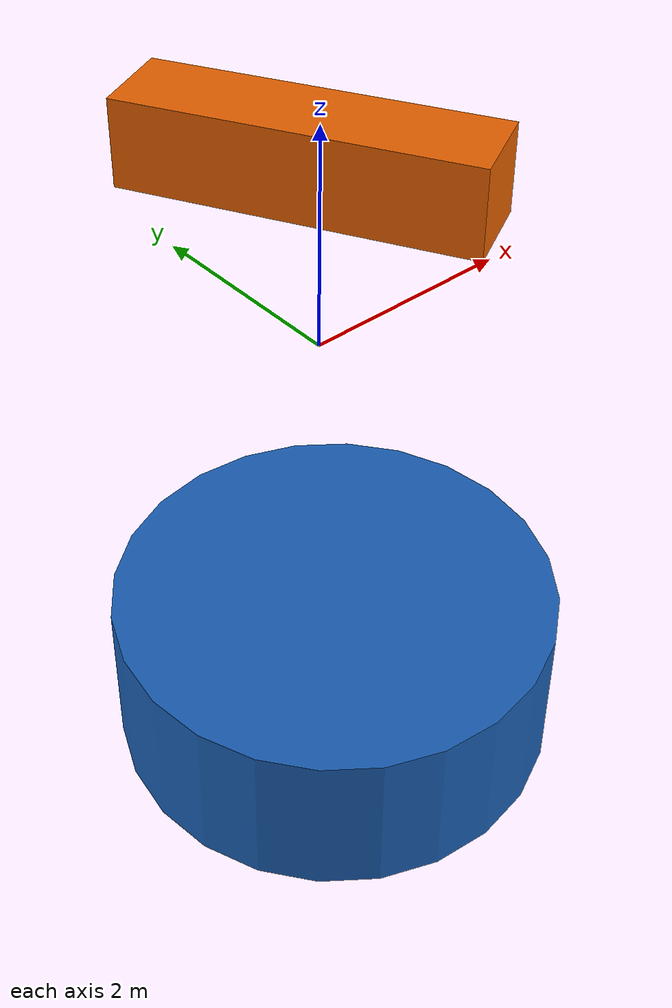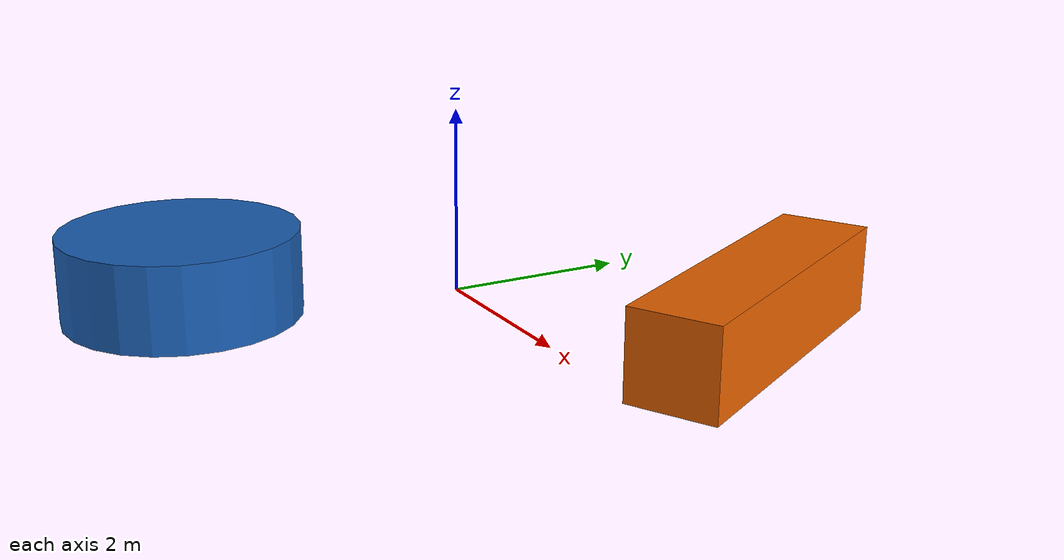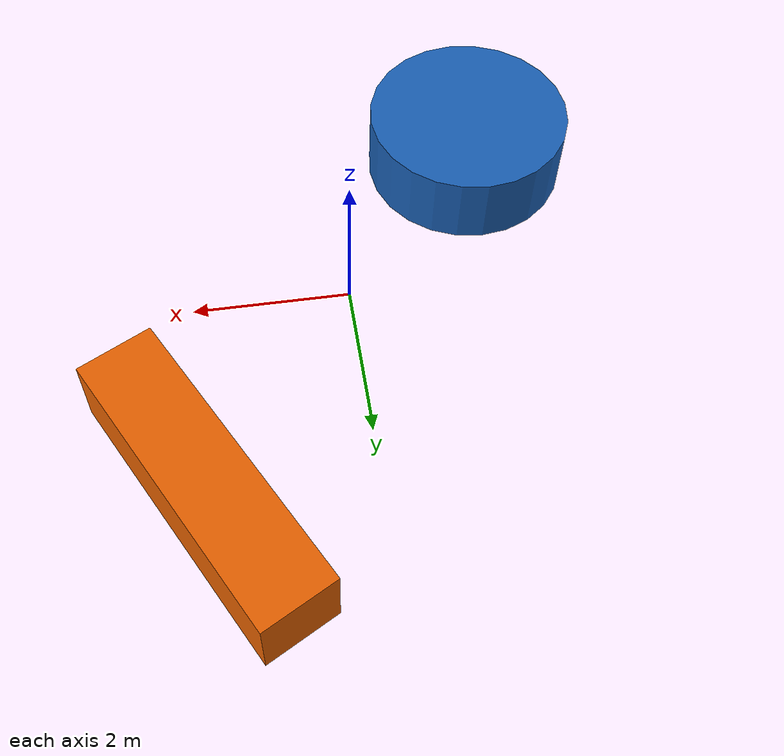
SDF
<?xml version='1.0'?>
<sdf version='1.7'>
  <model name='simple_objects'>
    <link name='link_0'>
      <inertial>
        <mass>3.90739</mass>
        <inertia>
          <ixx>5.29704</ixx>
          <ixy>0</ixy>
          <ixz>0</ixz>
          <iyy>0.651232</iyy>
          <iyz>0</iyz>
          <izz>5.29704</izz>
        </inertia>
        <pose>0 0 0 0 -0 0</pose>
      </inertial>
      <pose>2.0255 2.47846 0 0 -0 0.487153</pose>
      <gravity>1</gravity>
      <self_collide>0</self_collide>
      <kinematic>0</kinematic>
      <enable_wind>0</enable_wind>
      <visual name='visual'>
        <pose>0 0 0 0 -0 0</pose>
        <geometry>
          <box>
            <size>1 3.9074 1</size>
          </box>
        </geometry>
        <material>
          <lighting>1</lighting>
          <script>
            <uri>file://media/materials/scripts/gazebo.material</uri>
            <name>Gazebo/Grey</name>
          </script>
          <shader type='pixel'>
            <normal_map>__default__</normal_map>
          </shader>
          <ambient>0.102 0.373 0.706 1</ambient>
          <diffuse>0.902 0.38 0 1</diffuse>
          <specular>0.965 0.961 0.957 1</specular>
          <emissive>0 0 0 1</emissive>
        </material>
        <transparency>0</transparency>
        <cast_shadows>1</cast_shadows>
      </visual>
      <collision name='collision'>
        <laser_retro>0</laser_retro>
        <max_contacts>10</max_contacts>
        <pose>0 0 0 0 -0 0</pose>
        <geometry>
          <box>
            <size>1 3.9074 1</size>
          </box>
        </geometry>
        <surface>
          <friction>
            <ode>
              <mu>1</mu>
              <mu2>1</mu2>
              <fdir1>0 0 0</fdir1>
              <slip1>0</slip1>
              <slip2>0</slip2>
            </ode>
            <torsional>
              <coefficient>1</coefficient>
              <patch_radius>0</patch_radius>
              <surface_radius>0</surface_radius>
              <use_patch_radius>1</use_patch_radius>
              <ode>
                <slip>0</slip>
              </ode>
            </torsional>
          </friction>
          <bounce>
            <restitution_coefficient>0</restitution_coefficient>
            <threshold>1e+06</threshold>
          </bounce>
          <contact>
            <collide_without_contact>0</collide_without_contact>
            <collide_without_contact_bitmask>1</collide_without_contact_bitmask>
            <collide_bitmask>1</collide_bitmask>
            <ode>
              <soft_cfm>0</soft_cfm>
              <soft_erp>0.2</soft_erp>
              <kp>1e+13</kp>
              <kd>1</kd>
              <max_vel>0.01</max_vel>
              <min_depth>0</min_depth>
            </ode>
            <bullet>
              <split_impulse>1</split_impulse>
              <split_impulse_penetration_threshold>-0.01</split_impulse_penetration_threshold>
              <soft_cfm>0</soft_cfm>
              <soft_erp>0.2</soft_erp>
              <kp>1e+13</kp>
              <kd>1</kd>
            </bullet>
          </contact>
        </surface>
      </collision>
    </link>
    <link name='link_1'>
      <inertial>
        <mass>7.50015</mass>
        <inertia>
          <ixx>4.14075</ixx>
          <ixy>0</ixy>
          <ixz>0</ixz>
          <iyy>4.14075</iyy>
          <iyz>0</iyz>
          <izz>7.03147</izz>
        </inertia>
        <pose>0 0 0 0 -0 0</pose>
      </inertial>
      <pose>-2.0255 -2.47846 0 0 -0 0</pose>
      <gravity>1</gravity>
      <self_collide>0</self_collide>
      <kinematic>0</kinematic>
      <enable_wind>0</enable_wind>
      <visual name='visual'>
        <pose>0 0 0 0 -0 0</pose>
        <geometry>
          <cylinder>
            <radius>1.36931</radius>
            <length>1</length>
          </cylinder>
        </geometry>
        <material>
          <lighting>1</lighting>
          <script>
            <uri>file://media/materials/scripts/gazebo.material</uri>
            <name>Gazebo/Grey</name>
          </script>
          <shader type='pixel'>
            <normal_map>__default__</normal_map>
          </shader>
          <ambient>0.102 0.373 0.706 1</ambient>
          <diffuse>0.102 0.373 0.706 1</diffuse>
          <specular>0.102 0.373 0.706 1</specular>
          <emissive>0.102 0.373 0.706 1</emissive>
        </material>
        <transparency>0</transparency>
        <cast_shadows>1</cast_shadows>
      </visual>
      <collision name='collision'>
        <laser_retro>0</laser_retro>
        <max_contacts>10</max_contacts>
        <pose>0 0 0 0 -0 0</pose>
        <geometry>
          <cylinder>
            <radius>1.36931</radius>
            <length>1</length>
          </cylinder>
        </geometry>
        <surface>
          <friction>
            <ode>
              <mu>1</mu>
              <mu2>1</mu2>
              <fdir1>0 0 0</fdir1>
              <slip1>0</slip1>
              <slip2>0</slip2>
            </ode>
            <torsional>
              <coefficient>1</coefficient>
              <patch_radius>0</patch_radius>
              <surface_radius>0</surface_radius>
              <use_patch_radius>1</use_patch_radius>
              <ode>
                <slip>0</slip>
              </ode>
            </torsional>
          </friction>
          <bounce>
            <restitution_coefficient>0</restitution_coefficient>
            <threshold>1e+06</threshold>
          </bounce>
          <contact>
            <collide_without_contact>0</collide_without_contact>
            <collide_without_contact_bitmask>1</collide_without_contact_bitmask>
            <collide_bitmask>1</collide_bitmask>
            <ode>
              <soft_cfm>0</soft_cfm>
              <soft_erp>0.2</soft_erp>
              <kp>1e+13</kp>
              <kd>1</kd>
              <max_vel>0.01</max_vel>
              <min_depth>0</min_depth>
            </ode>
            <bullet>
              <split_impulse>1</split_impulse>
              <split_impulse_penetration_threshold>-0.01</split_impulse_penetration_threshold>
              <soft_cfm>0</soft_cfm>
              <soft_erp>0.2</soft_erp>
              <kp>1e+13</kp>
              <kd>1</kd>
            </bullet>
          </contact>
        </surface>
      </collision>
    </link>
    <static>0</static>
    <allow_auto_disable>1</allow_auto_disable>
  </model>
</sdf>
